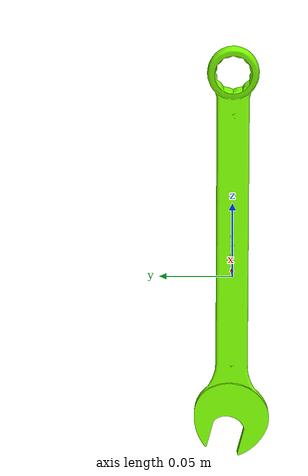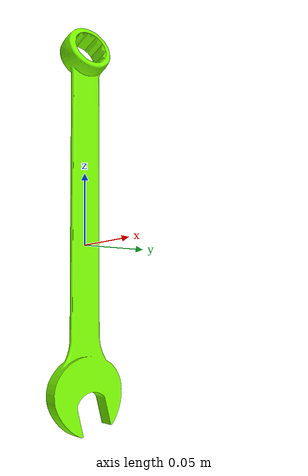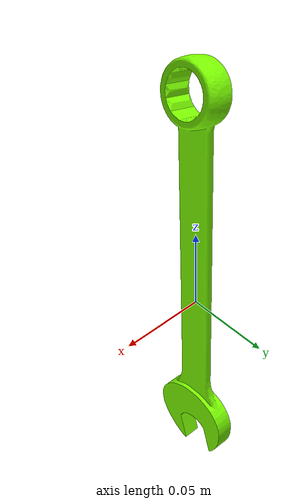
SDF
<?xml version="1.0"?>
<sdf version="1.7">
  <model name="combination_wrench_22mm_bright">
    <pose>0 0 0 0 0 0</pose>
    <static>false</static>
    <link name="link">
      <!-- link frame = tool CoM; Z = long axis (+ toward tool end), X = forward, Y = Z x X -->
      <inertial>
        <pose>0 0 0 0 0 0</pose>
        <mass>0.356086</mass>
        <inertia>
          <ixx>2.951184e-03</ixx>
          <ixy>-1.187266e-19</ixy>
          <ixz>-1.910026e-22</ixz>
          <iyy>2.914602e-03</iyy>
          <iyz>8.478367e-21</iyz>
          <izz>4.267003e-05</izz>
        </inertia>
      </inertial>
      <collision name="collision">
        <geometry>
          <mesh>
            <uri>model://combination_wrench_22mm/meshes/combination_wrench_22mm.dae</uri>
          </mesh>
        </geometry>
      </collision>
      <visual name="visual">
        <geometry>
          <mesh>
            <uri>model://combination_wrench_22mm/meshes/combination_wrench_22mm.dae</uri>
          </mesh>
        </geometry>
        <material>
          <ambient>0.218 0.450 0.000 1.0</ambient>
          <diffuse>0.485 1.000 0.000 1.0</diffuse>
          <specular>0.85 0.85 0.85 1.0</specular>
          <emissive>0 0 0 1.0</emissive>
        </material>
      </visual>
    </link>
  </model>
</sdf>
